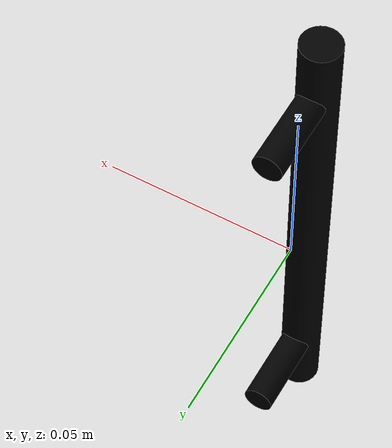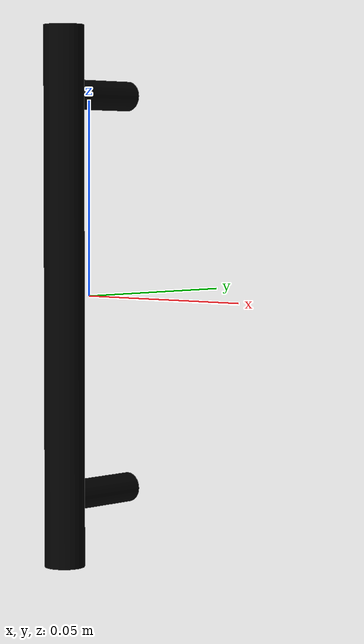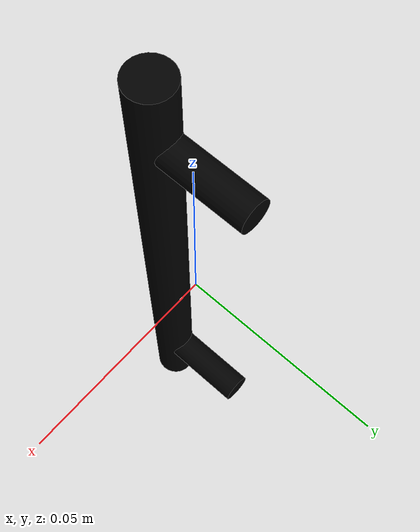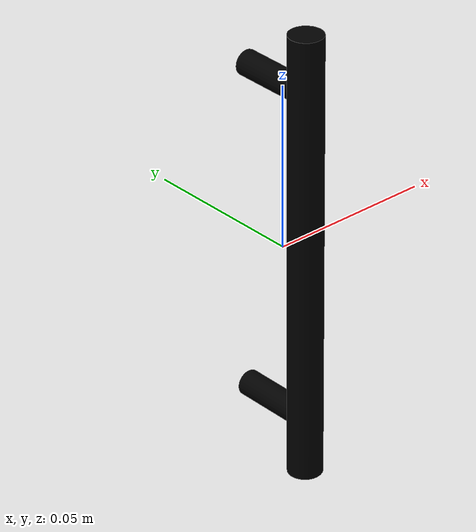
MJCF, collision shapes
<?xml version="1.0" ?>
<mujoco model="model">
    <compiler angle="radian"/>
    <asset>
        <mesh file="visuals/CabinetHandle005.obj" name="mesh"/>
        <texture file="visuals/T_BC001.png" name="tex" type="2d"/>
        <material name="mat" rgba="1 1 1 1.0" texture="tex" shininess="0.2" specular="0.6"/>
    </asset>
    <default>
        <default class="visual">
            <geom conaffinity="0" contype="0" group="1" type="mesh"/>
        </default>
        <default class="collision">
            <geom group="0" rgba="0 0 0 0"/>
        </default>
        <default class="spawn">
            <geom group="0" rgba="0 0 0 0" contype="0" conaffinity="0"/>
            <site group="0" rgba="0 0 0 0"/>
        </default>
    </default>
    <worldbody>
        <body>
            <body name="object">
                <geom mesh="mesh" type="mesh" solimp="0.998 0.998 0.001" solref="0.001 1" density="100" friction="0.95 0.3 0.1" class="visual" material="mat"/>
                <geom class="collision" type="cylinder" pos="0.0 -0.009232440032064915 0.0" size="0.0051431008614599705 0.06892692297697067" quat="1.0 0.0 0.0 0.0"/>
                <geom class="collision" type="cylinder" pos="0.0 0.0034062254708260298 0.05145308002829552" size="0.0038071603048592806 0.011221259832382202" quat="0.7071067094802856 0.7071068286895752 0.0 0.0" name="handle_connector"/>
                <geom class="collision" type="cylinder" pos="0.0 0.003379427595064044 -0.05092586204409599" size="0.0038071603048592806 0.011221259832382202" quat="0.7071067094802856 0.7071068286895752 0.0 0.0"/>
            </body>
        </body>
    </worldbody>
    <actuator/>
</mujoco>
